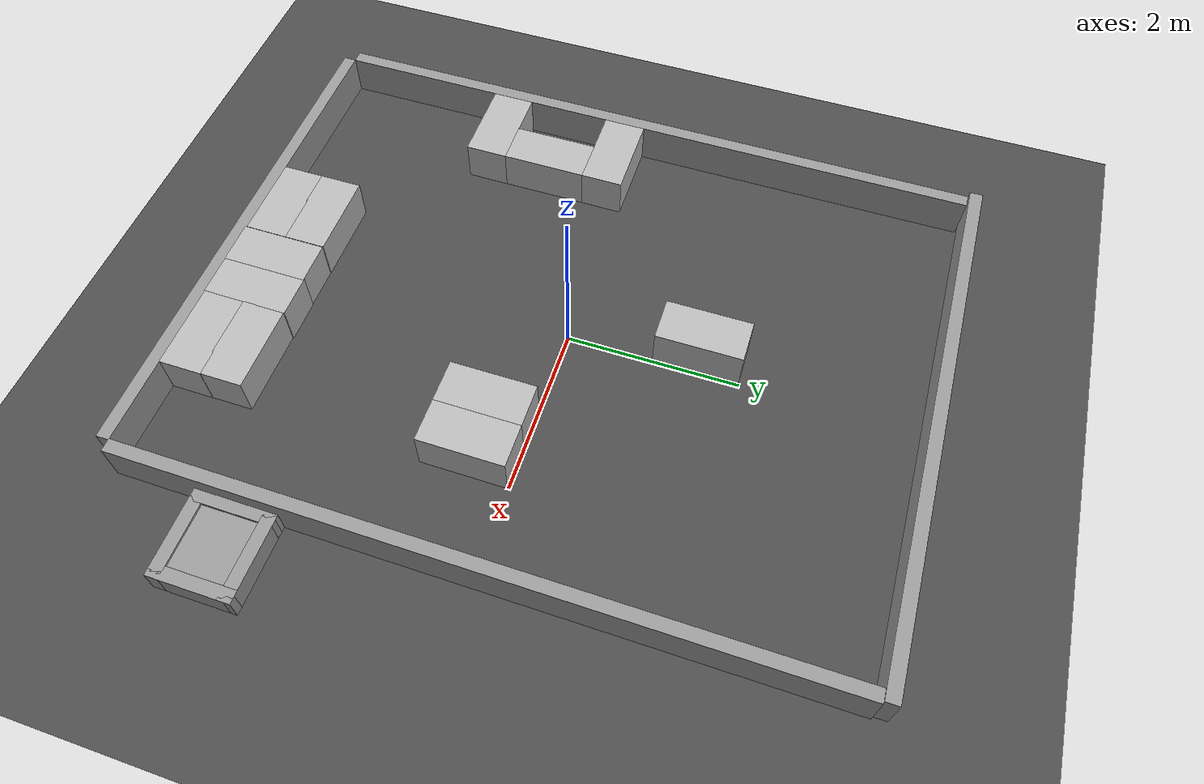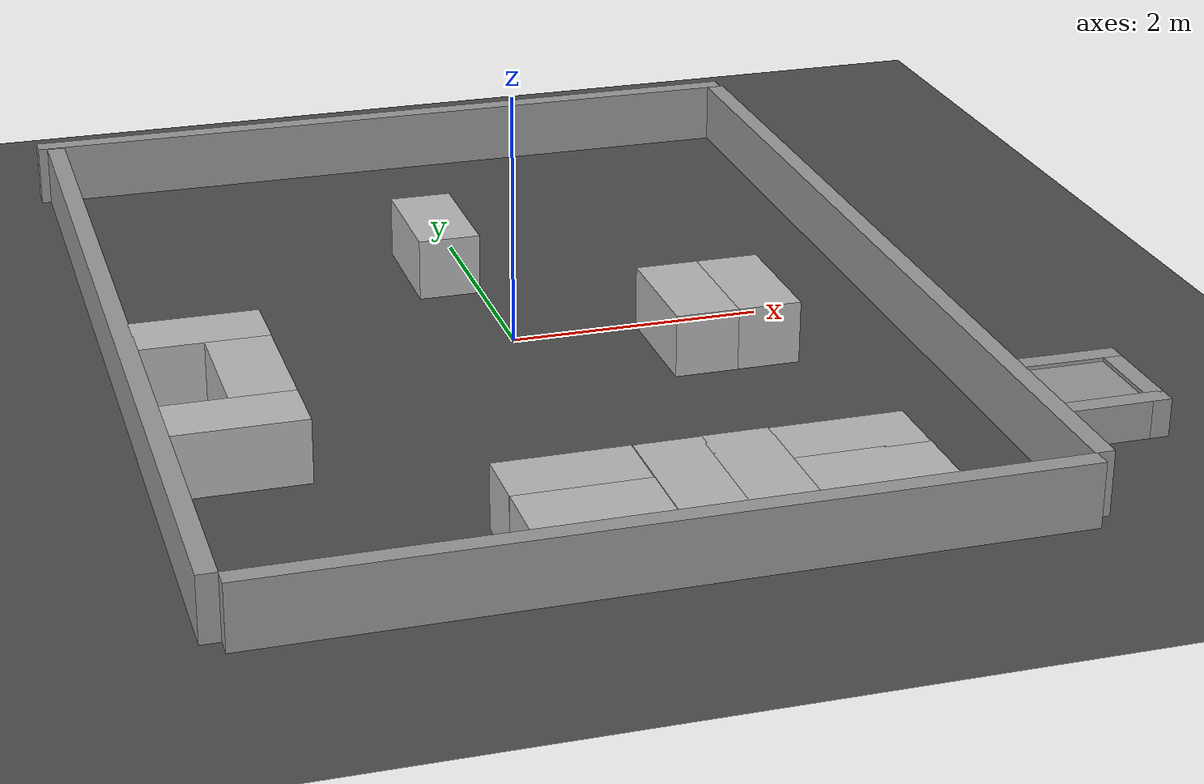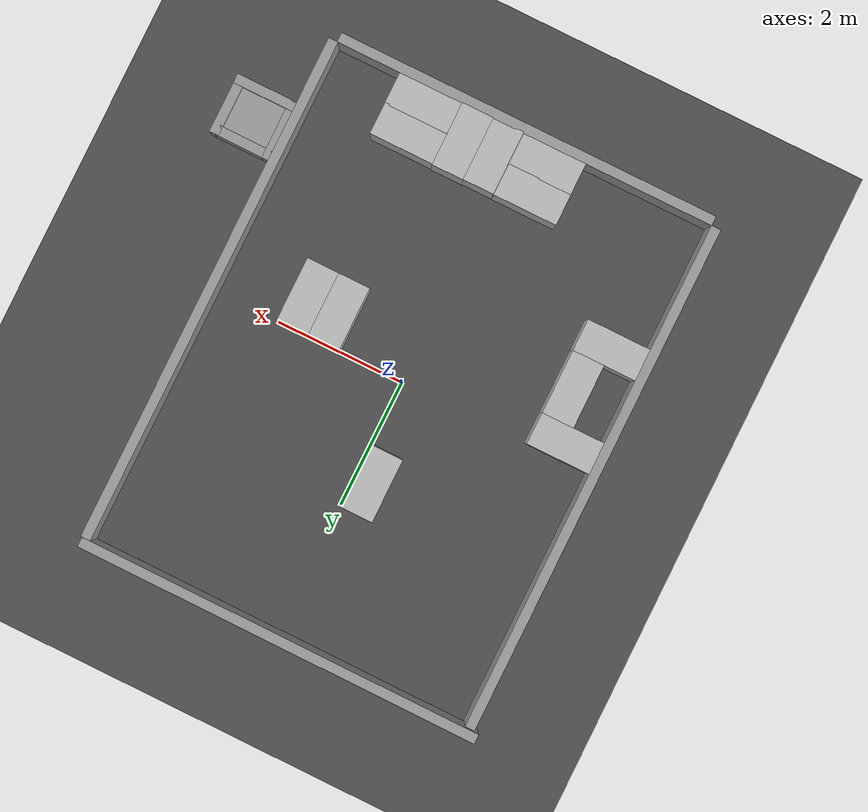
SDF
<sdf version="1.7">
 <world name="default">
  <model name="ground_plane">
   <static>1</static>
   <link name="link">
    <collision name="collision">
     <geometry><plane><normal>0 0 1</normal><size>100 100</size></plane></geometry>
    </collision>
    <visual name="visual">
     <cast_shadows>0</cast_shadows>
     <geometry><plane><normal>0 0 1</normal><size>100 100</size></plane></geometry>
     <material>
      <script><uri>file://media/materials/scripts/gazebo.material</uri><name>Gazebo/DarkGray</name></script>
     </material>
    </visual>
   </link>
  </model>
  <model name="greyBoxIsae">
   <pose>3.61381 -2.50208 0 0 -0 0</pose>
   <link name="Wall_0">
    <collision name="Wall_0_Collision">
     <geometry><box><size>0.75 0.75 0.27</size></box></geometry>
     <pose>0 0 0.135 0 -0 0</pose>
    </collision>
    <visual name="Wall_0_Visual">
     <pose>0 0 0.135 0 -0 0</pose>
     <geometry><box><size>0.75 0.75 0.27</size></box></geometry>
     <material>
      <script><uri>file://media/materials/scripts/gazebo.material</uri><name>Gazebo/Grey</name></script>
      <ambient>1 1 1 1</ambient>
     </material>
     <meta><layer>0</layer></meta>
    </visual>
    <pose>0.012 -0.047314 0 0 -0 0</pose>
   </link>
   <link name="Wall_10">
    <collision name="Wall_10_Collision">
     <geometry><box><size>0.948 0.15 0.3</size></box></geometry>
     <pose>0 0 0.15 0 -0 0</pose>
    </collision>
    <visual name="Wall_10_Visual">
     <pose>0 0 0.15 0 -0 0</pose>
     <geometry><box><size>0.948 0.15 0.3</size></box></geometry>
     <material>
      <script><uri>file://media/materials/scripts/gazebo.material</uri><name>Gazebo/Grey</name></script>
      <ambient>0.298039 0.298039 0.298039 1</ambient>
     </material>
     <meta><layer>0</layer></meta>
    </visual>
    <pose>-0.425 -0.000314 0 0 -0 1.5708</pose>
   </link>
   <link name="Wall_7">
    <collision name="Wall_7_Collision">
     <geometry><box><size>1 0.15 0.3</size></box></geometry>
     <pose>0 0 0.15 0 -0 0</pose>
    </collision>
    <visual name="Wall_7_Visual">
     <pose>0 0 0.15 0 -0 0</pose>
     <geometry><box><size>1 0.15 0.3</size></box></geometry>
     <material>
      <script><uri>file://media/materials/scripts/gazebo.material</uri><name>Gazebo/Grey</name></script>
      <ambient>0.298039 0.298039 0.298039 1</ambient>
     </material>
     <meta><layer>0</layer></meta>
    </visual>
    <pose>0 0.394186 0 0 -0 -0.010588</pose>
   </link>
   <link name="Wall_8">
    <collision name="Wall_8_Collision">
     <geometry><box><size>0.939322 0.15 0.3</size></box></geometry>
     <pose>0 0 0.15 0 -0 0</pose>
    </collision>
    <visual name="Wall_8_Visual">
     <pose>0 0 0.15 0 -0 0</pose>
     <geometry><box><size>0.939322 0.15 0.3</size></box></geometry>
     <material>
      <script><uri>file://media/materials/scripts/gazebo.material</uri><name>Gazebo/Grey</name></script>
      <ambient>0.298039 0.298039 0.298039 1</ambient>
     </material>
     <meta><layer>0</layer></meta>
    </visual>
    <pose>0.425 -0.004814 0 0 -0 -1.5708</pose>
   </link>
   <link name="Wall_9">
    <collision name="Wall_9_Collision">
     <geometry><box><size>1 0.15 0.3</size></box></geometry>
     <pose>0 0 0.15 0 -0 0</pose>
    </collision>
    <visual name="Wall_9_Visual">
     <pose>0 0 0.15 0 -0 0</pose>
     <geometry><box><size>1 0.15 0.3</size></box></geometry>
     <material>
      <script><uri>file://media/materials/scripts/gazebo.material</uri><name>Gazebo/Grey</name></script>
      <ambient>0.298039 0.298039 0.298039 1</ambient>
     </material>
     <meta><layer>0</layer></meta>
    </visual>
    <pose>0 -0.399314 0 0 -0 3.14159</pose>
   </link>
   <static>1</static>
  </model>
  <model name="external_area">
   <link name="left_wall">
    <pose>-0.042464 4.02442 0 0 0 -0.002396</pose>
    <inertial>
     <inertia><ixx>0</ixx><ixy>0</ixy><ixz>0</ixz><iyy>0</iyy><iyz>0</iyz><izz>0</izz></inertia>
     <mass>0</mass>
    </inertial>
    <visual name="Wall_6_Visual">
     <pose>0 0 0.25 0 -0 0</pose>
     <geometry><box><size>6.33294 0.15 0.5</size></box></geometry>
     <material>
      <script><uri>file://media/materials/scripts/gazebo.material</uri><name>Gazebo/Grey</name></script>
      <ambient>0.298039 0.298039 0.298039 1</ambient>
      <shader type="pixel"/>
     </material>
     <meta><layer>0</layer></meta>
    </visual>
    <collision name="Wall_6_Collision">
     <pose>0 0 0.25 0 -0 0</pose>
     <geometry><box><size>6.33294 0.15 0.5</size></box></geometry>
     <surface>
      <friction>
       <ode><mu>1</mu><mu2>1</mu2><fdir1>0 0 0</fdir1><slip1>0</slip1><slip2>0</slip2></ode>
       <torsional>
        <coefficient>1</coefficient>
        <patch_radius>0</patch_radius>
        <surface_radius>0</surface_radius>
        <use_patch_radius>1</use_patch_radius>
        <ode><slip>0</slip></ode>
       </torsional>
      </friction>
      <bounce><restitution_coefficient>0</restitution_coefficient><threshold>1e+06</threshold></bounce>
      <contact>
       <collide_without_contact>0</collide_without_contact>
       <collide_without_contact_bitmask>1</collide_without_contact_bitmask>
       <collide_bitmask>1</collide_bitmask>
       <ode>
        <soft_cfm>0</soft_cfm>
        <soft_erp>0.2</soft_erp>
        <kp>1e+13</kp>
        <kd>1</kd>
        <max_vel>0.01</max_vel>
        <min_depth>0</min_depth>
       </ode>
       <bullet>
        <split_impulse>1</split_impulse>
        <split_impulse_penetration_threshold>-0.01</split_impulse_penetration_threshold>
        <soft_cfm>0</soft_cfm>
        <soft_erp>0.2</soft_erp>
        <kp>1e+13</kp>
        <kd>1</kd>
       </bullet>
      </contact>
     </surface>
    </collision>
   </link>
   <link name="far_wall">
    <pose>3.06922 -0.060637 0 0 0 -1.57218</pose>
    <visual name="Wall_7_Visual">
     <pose>0 0 0.25 0 -0 0</pose>
     <geometry><box><size>8 0.15 0.5</size></box></geometry>
     <material>
      <script><uri>file://media/materials/scripts/gazebo.material</uri><name>Gazebo/Grey</name></script>
      <ambient>0.298039 0.298039 0.298039 1</ambient>
      <shader type="pixel"/>
     </material>
     <meta><layer>0</layer></meta>
    </visual>
    <collision name="Wall_7_Collision">
     <pose>0 0 0.25 0 -0 0</pose>
     <geometry><box><size>8 0.15 0.5</size></box></geometry>
     <surface>
      <friction>
       <ode><mu>1</mu><mu2>1</mu2><fdir1>0 0 0</fdir1><slip1>0</slip1><slip2>0</slip2></ode>
       <torsional>
        <coefficient>1</coefficient>
        <patch_radius>0</patch_radius>
        <surface_radius>0</surface_radius>
        <use_patch_radius>1</use_patch_radius>
        <ode><slip>0</slip></ode>
       </torsional>
      </friction>
      <bounce><restitution_coefficient>0</restitution_coefficient><threshold>1e+06</threshold></bounce>
      <contact>
       <collide_without_contact>0</collide_without_contact>
       <collide_without_contact_bitmask>1</collide_without_contact_bitmask>
       <collide_bitmask>1</collide_bitmask>
       <ode>
        <soft_cfm>0</soft_cfm>
        <soft_erp>0.2</soft_erp>
        <kp>1e+13</kp>
        <kd>1</kd>
        <max_vel>0.01</max_vel>
        <min_depth>0</min_depth>
       </ode>
       <bullet>
        <split_impulse>1</split_impulse>
        <split_impulse_penetration_threshold>-0.01</split_impulse_penetration_threshold>
        <soft_cfm>0</soft_cfm>
        <soft_erp>0.2</soft_erp>
        <kp>1e+13</kp>
        <kd>1</kd>
       </bullet>
      </contact>
     </surface>
    </collision>
   </link>
   <link name="near_wall">
    <pose>-3.06301 -0.060281 0 0 -0 1.5694</pose>
    <visual name="Wall_9_Visual">
     <pose>0 0 0.25 0 -0 0</pose>
     <geometry><box><size>8 0.15 0.5</size></box></geometry>
     <material>
      <script><uri>file://media/materials/scripts/gazebo.material</uri><name>Gazebo/Grey</name></script>
      <ambient>0.298039 0.298039 0.298039 1</ambient>
      <shader type="pixel"/>
     </material>
     <meta><layer>0</layer></meta>
    </visual>
    <collision name="Wall_9_Collision">
     <pose>0 0 0.25 0 -0 0</pose>
     <geometry><box><size>8 0.15 0.5</size></box></geometry>
     <surface>
      <friction>
       <ode><mu>1</mu><mu2>1</mu2><fdir1>0 0 0</fdir1><slip1>0</slip1><slip2>0</slip2></ode>
       <torsional>
        <coefficient>1</coefficient>
        <patch_radius>0</patch_radius>
        <surface_radius>0</surface_radius>
        <use_patch_radius>1</use_patch_radius>
        <ode><slip>0</slip></ode>
       </torsional>
      </friction>
      <bounce><restitution_coefficient>0</restitution_coefficient><threshold>1e+06</threshold></bounce>
      <contact>
       <collide_without_contact>0</collide_without_contact>
       <collide_without_contact_bitmask>1</collide_without_contact_bitmask>
       <collide_bitmask>1</collide_bitmask>
       <ode>
        <soft_cfm>0</soft_cfm>
        <soft_erp>0.2</soft_erp>
        <kp>1e+13</kp>
        <kd>1</kd>
        <max_vel>0.01</max_vel>
        <min_depth>0</min_depth>
       </ode>
       <bullet>
        <split_impulse>1</split_impulse>
        <split_impulse_penetration_threshold>-0.01</split_impulse_penetration_threshold>
        <soft_cfm>0</soft_cfm>
        <soft_erp>0.2</soft_erp>
        <kp>1e+13</kp>
        <kd>1</kd>
       </bullet>
      </contact>
     </surface>
    </collision>
   </link>
   <link name="right_wall">
    <pose>0.004659 -4.13195 0 0 -0 3.14159</pose>
    <visual name="Wall_8_Visual">
     <pose>0 0 0.25 0 -0 0</pose>
     <geometry><box><size>6 0.15 0.5</size></box></geometry>
     <material>
      <script><uri>file://media/materials/scripts/gazebo.material</uri><name>Gazebo/Grey</name></script>
      <ambient>0.298039 0.298039 0.298039 1</ambient>
      <shader type="pixel"/>
     </material>
     <meta><layer>0</layer></meta>
    </visual>
    <collision name="Wall_8_Collision">
     <pose>0 0 0.25 0 -0 0</pose>
     <geometry><box><size>6 0.15 0.5</size></box></geometry>
     <surface>
      <friction>
       <ode><mu>1</mu><mu2>1</mu2><fdir1>0 0 0</fdir1><slip1>0</slip1><slip2>0</slip2></ode>
       <torsional>
        <coefficient>1</coefficient>
        <patch_radius>0</patch_radius>
        <surface_radius>0</surface_radius>
        <use_patch_radius>1</use_patch_radius>
        <ode><slip>0</slip></ode>
       </torsional>
      </friction>
      <bounce><restitution_coefficient>0</restitution_coefficient><threshold>1e+06</threshold></bounce>
      <contact>
       <collide_without_contact>0</collide_without_contact>
       <collide_without_contact_bitmask>1</collide_without_contact_bitmask>
       <collide_bitmask>1</collide_bitmask>
       <ode>
        <soft_cfm>0</soft_cfm>
        <soft_erp>0.2</soft_erp>
        <kp>1e+13</kp>
        <kd>1</kd>
        <max_vel>0.01</max_vel>
        <min_depth>0</min_depth>
       </ode>
       <bullet>
        <split_impulse>1</split_impulse>
        <split_impulse_penetration_threshold>-0.01</split_impulse_penetration_threshold>
        <soft_cfm>0</soft_cfm>
        <soft_erp>0.2</soft_erp>
        <kp>1e+13</kp>
        <kd>1</kd>
       </bullet>
      </contact>
     </surface>
    </collision>
   </link>
   <static>1</static>
   <pose>-0.00805 0.07131 0 0 -0 0</pose>
  </model>
  <model name="batiment_residence_01">
   <static>1</static>
   <link name="body">
    <visual name="visual">
     <geometry>
      <mesh>
       <uri>file://models/batiment_residence_01/bat_res_01/bat_residence_01.dae</uri>
       <scale>1 1 1</scale>
      </mesh>
     </geometry>
    </visual>
    <collision name="collision">
     <geometry>
      <mesh>
       <uri>file://models/batiment_residence_01/bat_res_01/bat_residence_01.dae</uri>
       <scale>1 1 1</scale>
      </mesh>
     </geometry>
    </collision>
   </link>
   <pose>1.25055 -0.507915 0 0 -0 0</pose>
  </model>
  <model name="batiment_residence_01_0">
   <static>1</static>
   <link name="body">
    <visual name="visual">
     <geometry>
      <mesh>
       <uri>file://models/batiment_residence_01/bat_res_01/bat_residence_01.dae</uri>
       <scale>1 1 1</scale>
      </mesh>
     </geometry>
    </visual>
    <collision name="collision">
     <geometry>
      <mesh>
       <uri>file://models/batiment_residence_01/bat_res_01/bat_residence_01.dae</uri>
       <scale>1 1 1</scale>
      </mesh>
     </geometry>
    </collision>
   </link>
   <pose>1.74918 -0.507899 0 0 -0 0</pose>
  </model>
  <model name="bat_res_isae_clone_2">
   <static>1</static>
   <link name="body">
    <visual name="visual">
     <geometry>
      <mesh><uri>file://models/bat_res_isae/bat_isae/bat_isae.dae</uri><scale>1 1 1</scale></mesh>
     </geometry>
    </visual>
    <collision name="collision">
     <geometry>
      <mesh><uri>file://models/bat_res_isae/bat_isae/bat_isae.dae</uri><scale>1 1 1</scale></mesh>
     </geometry>
    </collision>
   </link>
   <pose>-0.264084 1.49279 0 0 -0 0</pose>
  </model>
  <model name="bat_res_avion">
   <static>1</static>
   <link name="body">
    <visual name="visual">
     <geometry>
      <mesh><uri>file://models/bat_res_avion/bat_res_avion/bat_res_avion.dae</uri><scale>1 1 1</scale></mesh>
     </geometry>
    </visual>
    <collision name="collision">
     <geometry>
      <mesh><uri>file://models/bat_res_avion/bat_res_avion/bat_res_avion.dae</uri><scale>1 1 1</scale></mesh>
     </geometry>
    </collision>
   </link>
   <pose>-0.497405 -3.25143 0 0 0 -1.5708</pose>
  </model>
  <model name="batiment_residence_01_2">
   <static>1</static>
   <link name="body">
    <visual name="visual">
     <geometry>
      <mesh>
       <uri>file://models/batiment_residence_01/bat_res_01/bat_residence_01.dae</uri>
       <scale>1 1 1</scale>
      </mesh>
     </geometry>
    </visual>
    <collision name="collision">
     <geometry>
      <mesh>
       <uri>file://models/batiment_residence_01/bat_res_01/bat_residence_01.dae</uri>
       <scale>1 1 1</scale>
      </mesh>
     </geometry>
    </collision>
   </link>
   <pose>0.258788 -3.50502 0 0 -0 0</pose>
  </model>
  <model name="batiment_residence_01_3">
   <static>1</static>
   <link name="body">
    <visual name="visual">
     <geometry>
      <mesh>
       <uri>file://models/batiment_residence_01/bat_res_01/bat_residence_01.dae</uri>
       <scale>1 1 1</scale>
      </mesh>
     </geometry>
    </visual>
    <collision name="collision">
     <geometry>
      <mesh>
       <uri>file://models/batiment_residence_01/bat_res_01/bat_residence_01.dae</uri>
       <scale>1 1 1</scale>
      </mesh>
     </geometry>
    </collision>
   </link>
   <pose>0.743301 -3.49892 0 0 -0 0</pose>
  </model>
  <model name="batiment_residence_01_4">
   <static>1</static>
   <link name="body">
    <visual name="visual">
     <geometry>
      <mesh>
       <uri>file://models/batiment_residence_01/bat_res_01/bat_residence_01.dae</uri>
       <scale>1 1 1</scale>
      </mesh>
     </geometry>
    </visual>
    <collision name="collision">
     <geometry>
      <mesh>
       <uri>file://models/batiment_residence_01/bat_res_01/bat_residence_01.dae</uri>
       <scale>1 1 1</scale>
      </mesh>
     </geometry>
    </collision>
   </link>
   <pose>1.49134 -3.74164 0 0 -0 1.5708</pose>
  </model>
  <model name="bat_res_avion_1">
   <static>1</static>
   <link name="body">
    <visual name="visual">
     <geometry>
      <mesh><uri>file://models/bat_res_avion/bat_res_avion/bat_res_avion.dae</uri><scale>1 1 1</scale></mesh>
     </geometry>
    </visual>
    <collision name="collision">
     <geometry>
      <mesh><uri>file://models/bat_res_avion/bat_res_avion/bat_res_avion.dae</uri><scale>1 1 1</scale></mesh>
     </geometry>
    </collision>
   </link>
   <pose>1.48772 -3.25862 0 0 -0 1.5708</pose>
  </model>
  <model name="batiment_residence_01_5">
   <static>1</static>
   <link name="body">
    <visual name="visual">
     <geometry>
      <mesh>
       <uri>file://models/batiment_residence_01/bat_res_01/bat_residence_01.dae</uri>
       <scale>1 1 1</scale>
      </mesh>
     </geometry>
    </visual>
    <collision name="collision">
     <geometry>
      <mesh>
       <uri>file://models/batiment_residence_01/bat_res_01/bat_residence_01.dae</uri>
       <scale>1 1 1</scale>
      </mesh>
     </geometry>
    </collision>
   </link>
   <pose>-0.495165 -3.73848 0 0 0 -1.5708</pose>
  </model>
  <model name="batiment_residence_01_6">
   <static>1</static>
   <link name="body">
    <visual name="visual">
     <geometry>
      <mesh>
       <uri>file://models/batiment_residence_01/bat_res_01/bat_residence_01.dae</uri>
       <scale>1 1 1</scale>
      </mesh>
     </geometry>
    </visual>
    <collision name="collision">
     <geometry>
      <mesh>
       <uri>file://models/batiment_residence_01/bat_res_01/bat_residence_01.dae</uri>
       <scale>1 1 1</scale>
      </mesh>
     </geometry>
    </collision>
   </link>
   <pose>-2.25568 -0.998353 0 0 -0 0</pose>
  </model>
  <model name="batiment_residence_01_6_clone">
   <static>1</static>
   <link name="body">
    <visual name="visual">
     <geometry>
      <mesh>
       <uri>file://models/batiment_residence_01/bat_res_01/bat_residence_01.dae</uri>
       <scale>1 1 1</scale>
      </mesh>
     </geometry>
    </visual>
    <collision name="collision">
     <geometry>
      <mesh>
       <uri>file://models/batiment_residence_01/bat_res_01/bat_residence_01.dae</uri>
       <scale>1 1 1</scale>
      </mesh>
     </geometry>
    </collision>
   </link>
   <pose>-2.50349 -0.250697 0 0 0 -1.5708</pose>
  </model>
  <model name="batiment_residence_01_6_clone_0">
   <static>1</static>
   <link name="body">
    <visual name="visual">
     <geometry>
      <mesh>
       <uri>file://models/batiment_residence_01/bat_res_01/bat_residence_01.dae</uri>
       <scale>1 1 1</scale>
      </mesh>
     </geometry>
    </visual>
    <collision name="collision">
     <geometry>
      <mesh>
       <uri>file://models/batiment_residence_01/bat_res_01/bat_residence_01.dae</uri>
       <scale>1 1 1</scale>
      </mesh>
     </geometry>
    </collision>
   </link>
   <pose>-2.50577 -1.74686 0 0 0 -1.5708</pose>
  </model>
 </world>
</sdf>
